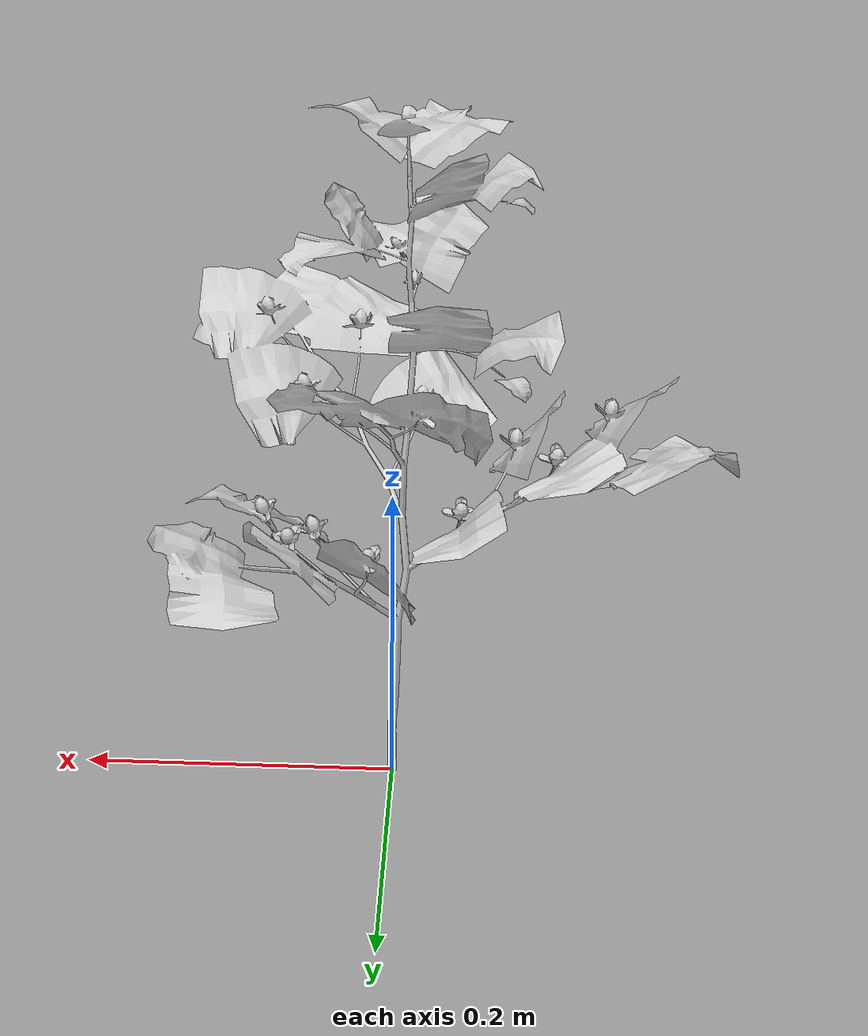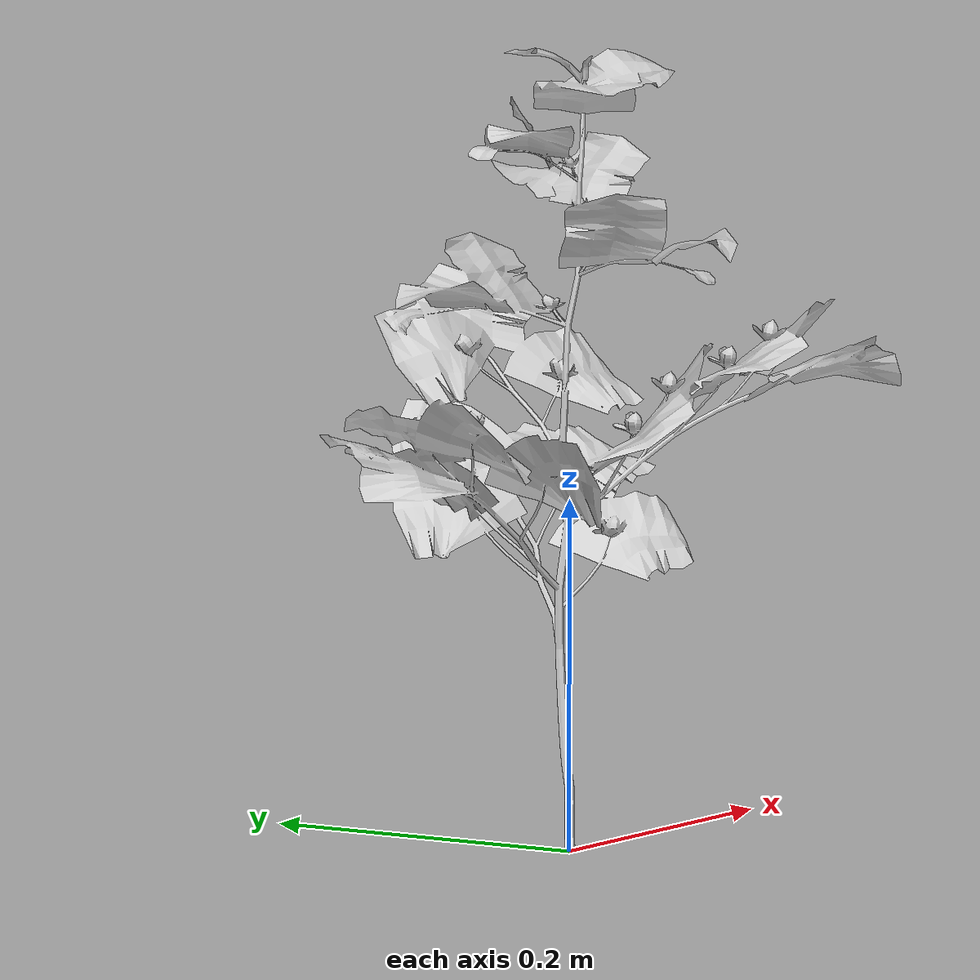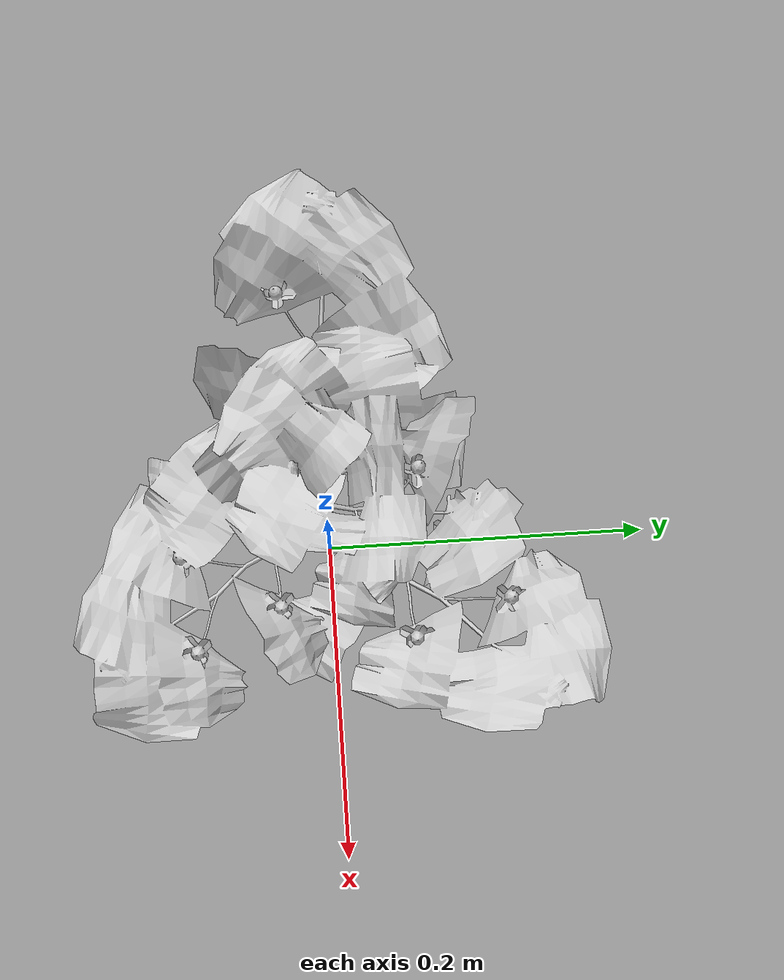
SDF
<?xml version="1.0" ?>
<sdf version="1.5">
	<model name="cotton4">
      <pose>0 0 0  0 0 0</pose>
      <static>true</static>
      <link name="body">
		<collision name="collision">
		    <geometry>
		      <mesh>
		        <uri>model://cotton4/cotton4.dae</uri>
		      </mesh>
		    </geometry>
      	</collision>
        <visual name="visual">
          <geometry>
            <mesh><uri>model://cotton4/cotton4.dae</uri></mesh>
          </geometry>
        </visual>
      </link>
    </model>
</sdf>
